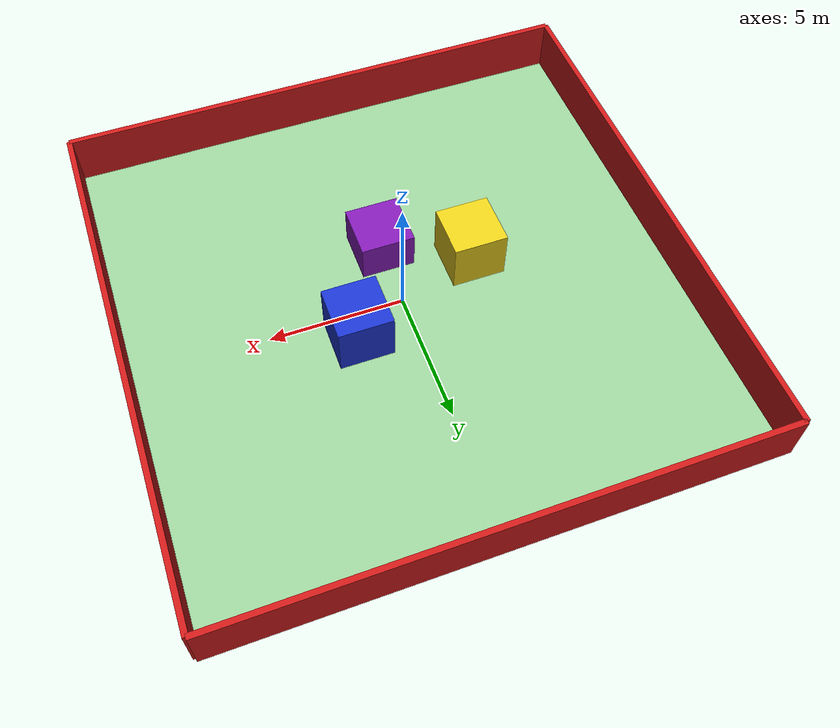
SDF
<?xml version="1.0"?>

<sdf version="1.9">
  <world name="airmouse_map">

    <!-- ==================== PHYSICS ==================== -->
    <gravity>0 0 -9.81</gravity>

    <!-- Earth's magnetic field in Tesla -->
    <magnetic_field>6e-06 2.3e-05 -4.2e-05</magnetic_field>
    <spherical_coordinates>
      <surface_model>EARTH_WGS84</surface_model>
      <world_frame_orientation>ENU</world_frame_orientation>
      <latitude_deg>47.397971057728974</latitude_deg>
      <longitude_deg>8.546163739800146</longitude_deg>
      <elevation>0</elevation>
    </spherical_coordinates>

    <physics name="1ms" type="ode">
      <max_step_size>0.001</max_step_size>
      <real_time_factor>1</real_time_factor>
      <real_time_update_rate>1000</real_time_update_rate>
    </physics>

    <!-- ==================== LIGHTING ==================== -->
    <scene>
      <ambient>0.5 0.5 0.5 1</ambient>
      <background>0.15 0.15 0.15 1</background>
    </scene>

    <light name="sun" type="directional">
      <cast_shadows>true</cast_shadows>
      <pose>0 0 10 0 0 0</pose>
      <diffuse>0.9 0.9 0.9 1</diffuse>
      <specular>0.3 0.3 0.3 1</specular>
      <direction>-0.5 -0.5 -1</direction>
    </light>

    <!-- ==================== GROUND ==================== -->
    <model name="ground">
      <static>true</static>

      <link name="ground_link">
        <collision name="ground_collision">
          <pose>0 0 -0.05 0 0 0</pose>
          <geometry>
            <box>
              <size>20 20 0.1</size>
            </box>
          </geometry>
        </collision>

        <visual name="ground_visual">
          <pose>0 0 -0.05 0 0 0</pose>
          <geometry>
            <box>
              <size>20 20 0.1</size>
            </box>
          </geometry>
          <material>
            <ambient>0.6 0.8 0.6 1</ambient>
            <diffuse>0.6 0.8 0.6 1</diffuse>
          </material>
        </visual>
      </link>
    </model>

    <!-- ==================== NORTH WALL ==================== -->
    <model name="north_wall">
      <static>true</static>

      <link name="wall_link">
        <pose>0 10 1 0 0 0</pose>

        <collision name="wall_collision">
          <geometry>
            <box>
              <size>20 0.2 2</size>
            </box>
          </geometry>
        </collision>

        <visual name="wall_visual">
          <geometry>
            <box>
              <size>20 0.2 2</size>
            </box>
          </geometry>
          <material>
            <ambient>0.8 0.1 0.1 1</ambient>
            <diffuse>0.8 0.1 0.1 1</diffuse>
          </material>
        </visual>
      </link>
    </model>

    <!-- ==================== SOUTH WALL ==================== -->
    <model name="south_wall">
      <static>true</static>

      <link name="wall_link">
        <pose>0 -10 1 0 0 0</pose>

        <collision name="wall_collision">
          <geometry>
            <box>
              <size>20 0.2 2</size>
            </box>
          </geometry>
        </collision>

        <visual name="wall_visual">
          <geometry>
            <box>
              <size>20 0.2 2</size>
            </box>
          </geometry>
          <material>
            <ambient>0.8 0.1 0.1 1</ambient>
            <diffuse>0.8 0.1 0.1 1</diffuse>
          </material>
        </visual>
      </link>
    </model>

    <!-- ==================== EAST WALL ==================== -->
    <model name="east_wall">
      <static>true</static>

      <link name="wall_link">
        <pose>10 0 1 0 0 0</pose>

        <collision name="wall_collision">
          <geometry>
            <box>
              <size>0.2 20 2</size>
            </box>
          </geometry>
        </collision>

        <visual name="wall_visual">
          <geometry>
            <box>
              <size>0.2 20 2</size>
            </box>
          </geometry>
          <material>
            <ambient>0.8 0.1 0.1 1</ambient>
            <diffuse>0.8 0.1 0.1 1</diffuse>
          </material>
        </visual>
      </link>
    </model>

    <!-- ==================== WEST WALL ==================== -->
    <model name="west_wall">
      <static>true</static>

      <link name="wall_link">
        <pose>-10 0 1 0 0 0</pose>

        <collision name="wall_collision">
          <geometry>
            <box>
              <size>0.2 20 2</size>
            </box>
          </geometry>
        </collision>

        <visual name="wall_visual">
          <geometry>
            <box>
              <size>0.2 20 2</size>
            </box>
          </geometry>
          <material>
            <ambient>0.8 0.1 0.1 1</ambient>
            <diffuse>0.8 0.1 0.1 1</diffuse>
          </material>
        </visual>
      </link>
    </model>

    <!-- ==================== OBSTACLE 1 ==================== -->
    <model name="obstacle_1">
      <static>true</static>

      <link name="obstacle_link">
        <pose>2 1 1 0 0 0</pose>

        <collision name="obstacle_collision">
          <geometry>
            <box>
              <size>2 2 2</size>
            </box>
          </geometry>
        </collision>

        <visual name="obstacle_visual">
          <geometry>
            <box>
              <size>2 2 2</size>
            </box>
          </geometry>
          <material>
            <ambient>0.1 0.2 0.8 1</ambient>
            <diffuse>0.1 0.2 0.8 1</diffuse>
          </material>
        </visual>
      </link>
    </model>

    <!-- ==================== OBSTACLE 2 ==================== -->
    <model name="obstacle_2">
      <static>true</static>

      <link name="obstacle_link">
        <pose>-3 -1 1 0 0 0</pose>

        <collision name="obstacle_collision">
          <geometry>
            <box>
              <size>2 2 2</size>
            </box>
          </geometry>
        </collision>

        <visual name="obstacle_visual">
          <geometry>
            <box>
              <size>2 2 2</size>
            </box>
          </geometry>
          <material>
            <ambient>0.9 0.8 0.1 1</ambient>
            <diffuse>0.9 0.8 0.1 1</diffuse>
          </material>
        </visual>
      </link>
    </model>

    <!-- ==================== OBSTACLE 3 ==================== -->
    <model name="obstacle_3">
      <static>true</static>

      <link name="obstacle_link">
        <pose>0 -2.5 0.75 0 0 0</pose>

        <collision name="obstacle_collision">
          <geometry>
            <box>
              <size>2 2 1.5</size>
            </box>
          </geometry>
        </collision>

        <visual name="obstacle_visual">
          <geometry>
            <box>
              <size>2 2 1.5</size>
            </box>
          </geometry>
          <material>
            <ambient>0.5 0.1 0.7 1</ambient>
            <diffuse>0.5 0.1 0.7 1</diffuse>
          </material>
        </visual>
      </link>
    </model>

  </world>
</sdf>
